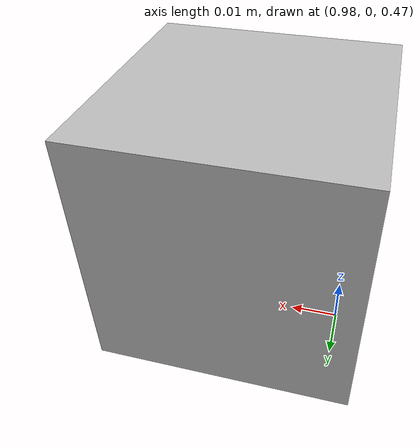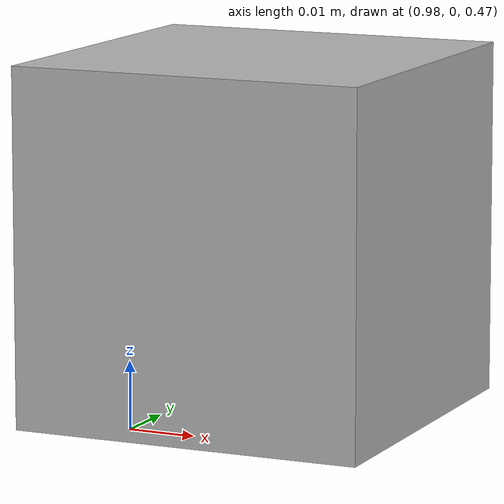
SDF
<?xml version='1.0'?>
<sdf version='1.6'>
 <model name="camera">
      <pose>1 0 0.5 0 0 0</pose>
      <static>true</static>
      <link name="link">
        <visual name="visual">
          <geometry>
            <box>
              <size>0.05 0.05 0.05</size>
            </box>
          </geometry>
          <material>
            <script>Gazebo/Grey</script>
          </material>
        </visual>
        <sensor name="camera" type="camera">
          <camera>
            <horizontal_fov>1.047</horizontal_fov>
            <image>
              <width>640</width>
              <height>480</height>
            </image>
            <clip>
              <near>0.1</near>
              <far>100</far>
            </clip>
          </camera>
          <always_on>1</always_on>
          <update_rate>30</update_rate>
          <visualize>true</visualize>
          <plugin name="camera_controller" filename="libgazebo_ros_camera.so">
            <alwaysOn>true</alwaysOn>
            <updateRate>0.0</updateRate>
            <cameraName>blue_team/camera3</cameraName>
            <imageTopicName>image_raw</imageTopicName>
            <cameraInfoTopicName>camera_info</cameraInfoTopicName>
            <frameName>camera_link</frameName>
            <hackBaseline>0.07</hackBaseline>
            <distortionK1>0.0</distortionK1>
            <distortionK2>0.0</distortionK2>
            <distortionK3>0.0</distortionK3>
            <distortionT1>0.0</distortionT1>
            <distortionT2>0.0</distortionT2>
          </plugin>
        </sensor>
      </link>

      <!-- Load the plugin to control the FRC camera -->
      <plugin name="FRC_blue_camera_plugin" filename='libFRCBlueCameraPlugin.so'>
        <!-- Parameters -->
        <topic>/blue/joy3</topic>
      </plugin>
  </model>
</sdf>
